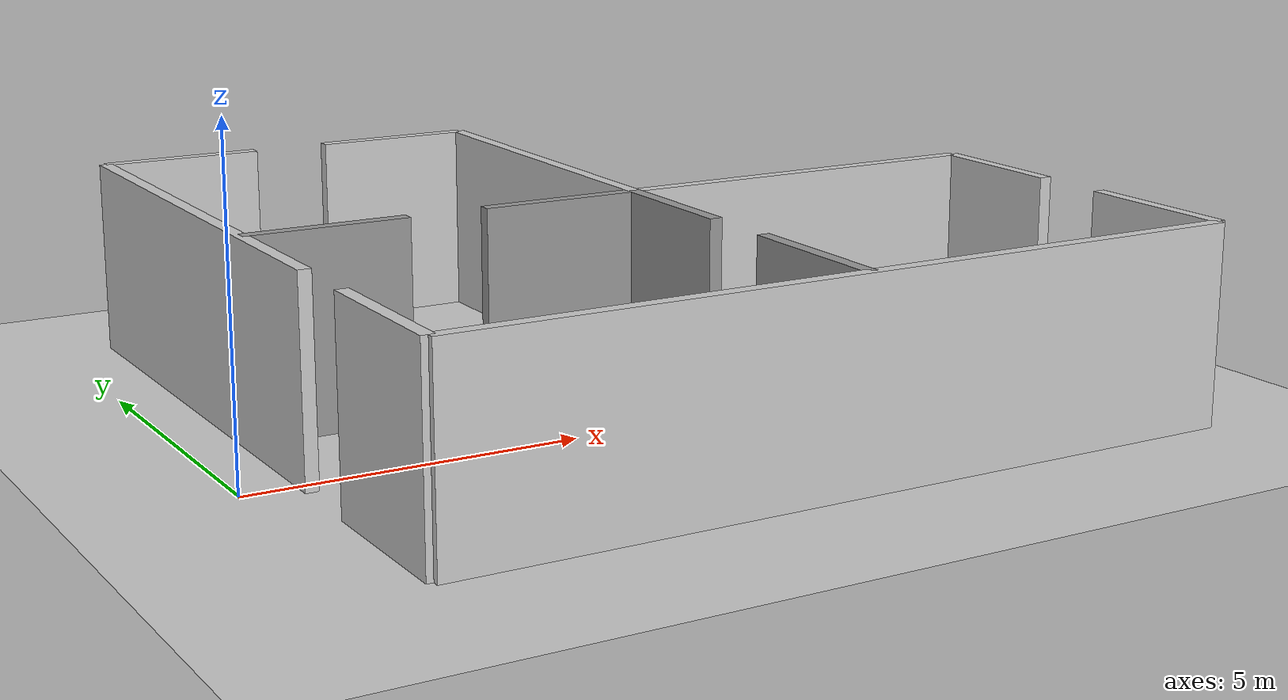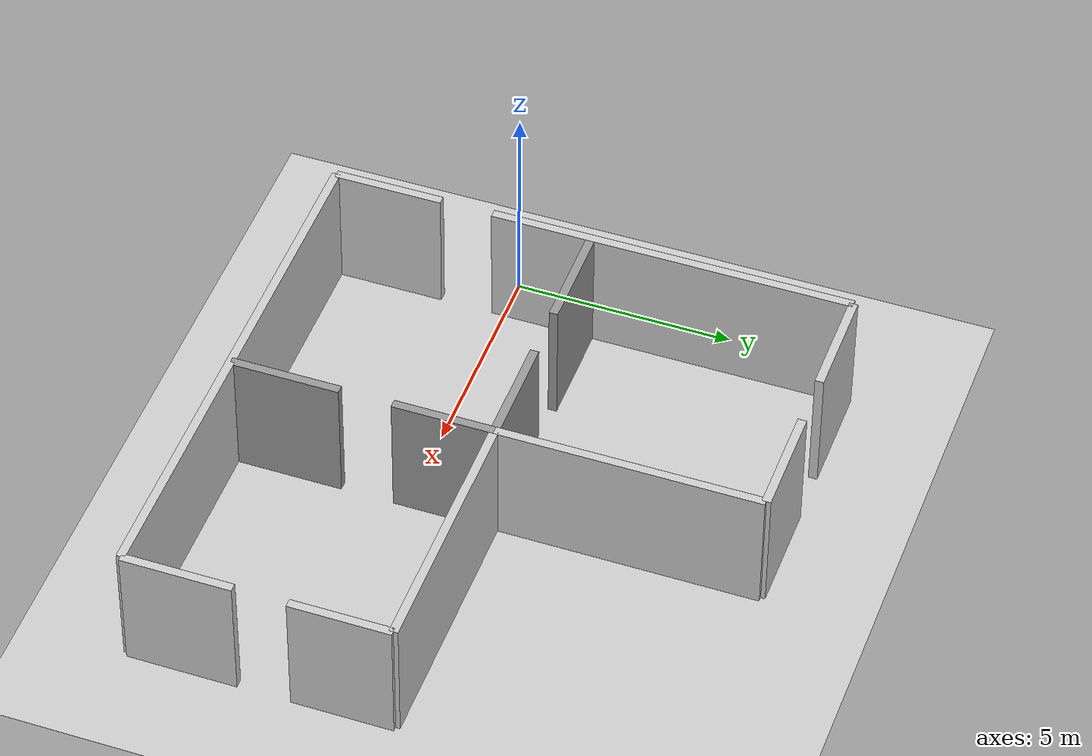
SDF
<sdf version="1.10">
 <world name="prueba_1">
  <physics name="1ms" type="ignored">
   <max_step_size>0.0030000000000000001</max_step_size>
   <real_time_factor>1</real_time_factor>
   <real_time_update_rate>1000</real_time_update_rate>
  </physics>
  <plugin name="gz::sim::systems::Physics" filename="gz-sim-physics-system"/>
  <plugin name="gz::sim::systems::UserCommands" filename="gz-sim-user-commands-system"/>
  <plugin name="gz::sim::systems::SceneBroadcaster" filename="gz-sim-scene-broadcaster-system"/>
  <plugin name="gz::sim::systems::Contact" filename="gz-sim-contact-system"/>
  <gravity>0 0 -9.8000000000000007</gravity>
  <magnetic_field>5.5644999999999998e-06 2.2875799999999999e-05 -4.2388400000000002e-05</magnetic_field>
  <atmosphere type="adiabatic"/>
  <scene>
   <ambient>0.400000006 0.400000006 0.400000006 1</ambient>
   <background>0.699999988 0.699999988 0.699999988 1</background>
   <shadows>true</shadows>
  </scene>
  <model name="ground_plane">
   <static>true</static>
   <link name="link">
    <collision name="collision">
     <geometry><plane><normal>0 0 1</normal><size>100 100</size></plane></geometry>
    </collision>
    <visual name="visual">
     <geometry><plane><normal>0 0 1</normal><size>100 100</size></plane></geometry>
     <material>
      <ambient>0.800000012 0.800000012 0.800000012 1</ambient>
      <diffuse>0.800000012 0.800000012 0.800000012 1</diffuse>
      <specular>0.800000012 0.800000012 0.800000012 1</specular>
     </material>
    </visual>
    <inertial>
     <mass>1</mass>
     <inertia><ixx>1</ixx><ixy>0</ixy><ixz>0</ixz><iyy>1</iyy><iyz>0</iyz><izz>1</izz></inertia>
    </inertial>
   </link>
  </model>
  <model name="habitaciones_conectadas">
   <static>true</static>
   <link name="wall_bottom">
    <pose>7 -4.0 1.5 0 0 0</pose>
    <visual name="visual">
     <geometry><box><size>12.2 0.2 3.0</size></box></geometry>
     <material><ambient>0.8 0.8 0.8 1</ambient><diffuse>0.8 0.8 0.8 1</diffuse></material>
    </visual>
    <collision name="collision"><geometry><box><size>12.2 0.2 3.0</size></box></geometry></collision>
   </link>
   <link name="wall_left_lower">
    <pose>0.9 -2.75 1.5 0 0 0</pose>
    <visual name="visual">
     <geometry><box><size>0.2 2.5 3.0</size></box></geometry>
     <material><ambient>0.8 0.8 0.8 1</ambient><diffuse>0.8 0.8 0.8 1</diffuse></material>
    </visual>
    <collision name="collision"><geometry><box><size>0.2 2.5 3.0</size></box></geometry></collision>
   </link>
   <link name="wall_left_upper">
    <pose>0.9 3.85 1.5 0 0 0</pose>
    <visual name="visual">
     <geometry><box><size>0.2 8.3 3.0</size></box></geometry>
     <material><ambient>0.8 0.8 0.8 1</ambient><diffuse>0.8 0.8 0.8 1</diffuse></material>
    </visual>
    <collision name="collision"><geometry><box><size>0.2 8.3 3.0</size></box></geometry></collision>
   </link>
   <link name="wall_top_left">
    <pose>2.15 8.0 1.5 0 0 0</pose>
    <visual name="visual">
     <geometry><box><size>2.5 0.2 3.0</size></box></geometry>
     <material><ambient>0.8 0.8 0.8 1</ambient><diffuse>0.8 0.8 0.8 1</diffuse></material>
    </visual>
    <collision name="collision"><geometry><box><size>2.5 0.2 3.0</size></box></geometry></collision>
   </link>
   <link name="wall_top_right">
    <pose>5.85 8.0 1.5 0 0 0</pose>
    <visual name="visual">
     <geometry><box><size>2.5 0.2 3.0</size></box></geometry>
     <material><ambient>0.8 0.8 0.8 1</ambient><diffuse>0.8 0.8 0.8 1</diffuse></material>
    </visual>
    <collision name="collision"><geometry><box><size>2.5 0.2 3.0</size></box></geometry></collision>
   </link>
   <link name="wall_h3_right">
    <pose>7.1 5.0 1.5 0 0 0</pose>
    <visual name="visual">
     <geometry><box><size>0.2 6.0 3.0</size></box></geometry>
     <material><ambient>0.8 0.8 0.8 1</ambient><diffuse>0.8 0.8 0.8 1</diffuse></material>
    </visual>
    <collision name="collision"><geometry><box><size>0.2 6.0 3.0</size></box></geometry></collision>
   </link>
   <link name="wall_h2_top">
    <pose>10.1 2.0 1.5 0 0 0</pose>
    <visual name="visual">
     <geometry><box><size>6.0 0.2 3.0</size></box></geometry>
     <material><ambient>0.8 0.8 0.8 1</ambient><diffuse>0.8 0.8 0.8 1</diffuse></material>
    </visual>
    <collision name="collision"><geometry><box><size>6.0 0.2 3.0</size></box></geometry></collision>
   </link>
   <link name="wall_right_lower">
    <pose>13.1 -2.75 1.5 0 0 0</pose>
    <visual name="visual">
     <geometry><box><size>0.2 2.5 3.0</size></box></geometry>
     <material><ambient>0.8 0.8 0.8 1</ambient><diffuse>0.8 0.8 0.8 1</diffuse></material>
    </visual>
    <collision name="collision"><geometry><box><size>0.2 2.5 3.0</size></box></geometry></collision>
   </link>
   <link name="wall_right_upper">
    <pose>13.1 0.85 1.5 0 0 0</pose>
    <visual name="visual">
     <geometry><box><size>0.2 2.3 3.0</size></box></geometry>
     <material><ambient>0.8 0.8 0.8 1</ambient><diffuse>0.8 0.8 0.8 1</diffuse></material>
    </visual>
    <collision name="collision"><geometry><box><size>0.2 2.3 3.0</size></box></geometry></collision>
   </link>
   <link name="inner_wall_v_lower">
    <pose>7.1 -2.75 1.5 0 0 0</pose>
    <visual name="visual">
     <geometry><box><size>0.2 2.5 3.0</size></box></geometry>
     <material><ambient>0.6 0.6 0.6 1</ambient><diffuse>0.6 0.6 0.6 1</diffuse></material>
    </visual>
    <collision name="collision"><geometry><box><size>0.2 2.5 3.0</size></box></geometry></collision>
   </link>
   <link name="inner_wall_v_upper">
    <pose>7.1 0.85 1.5 0 0 0</pose>
    <visual name="visual">
     <geometry><box><size>0.2 2.3 3.0</size></box></geometry>
     <material><ambient>0.6 0.6 0.6 1</ambient><diffuse>0.6 0.6 0.6 1</diffuse></material>
    </visual>
    <collision name="collision"><geometry><box><size>0.2 2.3 3.0</size></box></geometry></collision>
   </link>
   <link name="inner_wall_h_left">
    <pose>2.15 2.0 1.5 0 0 0</pose>
    <visual name="visual">
     <geometry><box><size>2.5 0.2 3.0</size></box></geometry>
     <material><ambient>0.6 0.6 0.6 1</ambient><diffuse>0.6 0.6 0.6 1</diffuse></material>
    </visual>
    <collision name="collision"><geometry><box><size>2.5 0.2 3.0</size></box></geometry></collision>
   </link>
   <link name="inner_wall_h_right">
    <pose>5.85 2.0 1.5 0 0 0</pose>
    <visual name="visual">
     <geometry><box><size>2.5 0.2 3.0</size></box></geometry>
     <material><ambient>0.6 0.6 0.6 1</ambient><diffuse>0.6 0.6 0.6 1</diffuse></material>
    </visual>
    <collision name="collision"><geometry><box><size>2.5 0.2 3.0</size></box></geometry></collision>
   </link>
  </model>
  <light name="sun" type="directional">
   <pose>0 0 10 0 0 0</pose>
   <intensity>1</intensity>
   <direction>-0.5 0.10000000000000001 -0.90000000000000002</direction>
   <diffuse>0.800000012 0.800000012 0.800000012 1</diffuse>
   <specular>0.200000003 0.200000003 0.200000003 1</specular>
   <attenuation>
    <range>1000</range>
    <linear>0.01</linear>
    <constant>0.90000000000000002</constant>
    <quadratic>0.001</quadratic>
   </attenuation>
   <spot><inner_angle>0</inner_angle><outer_angle>0</outer_angle><falloff>0</falloff></spot>
  </light>
 </world>
</sdf>
